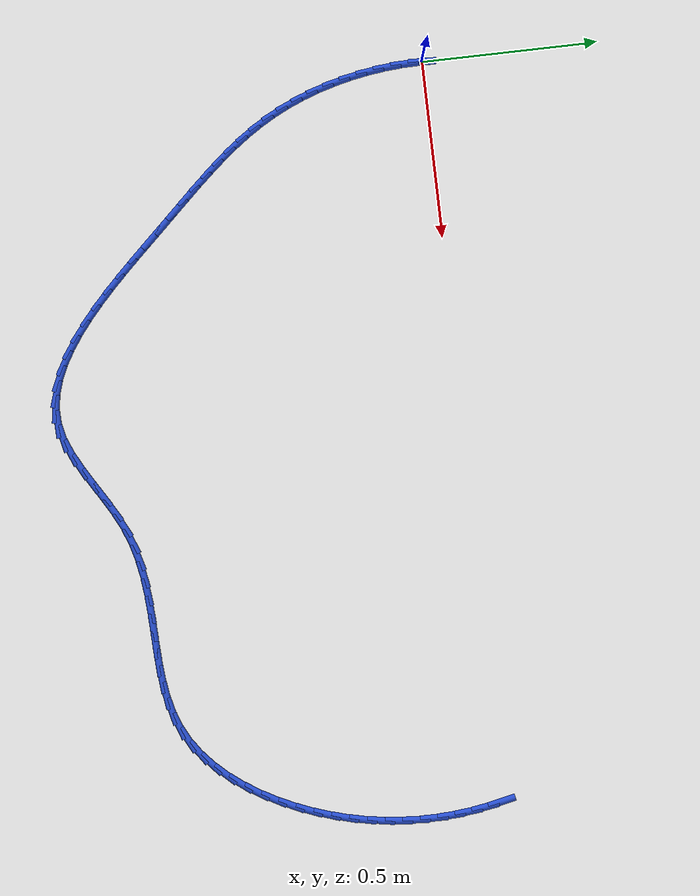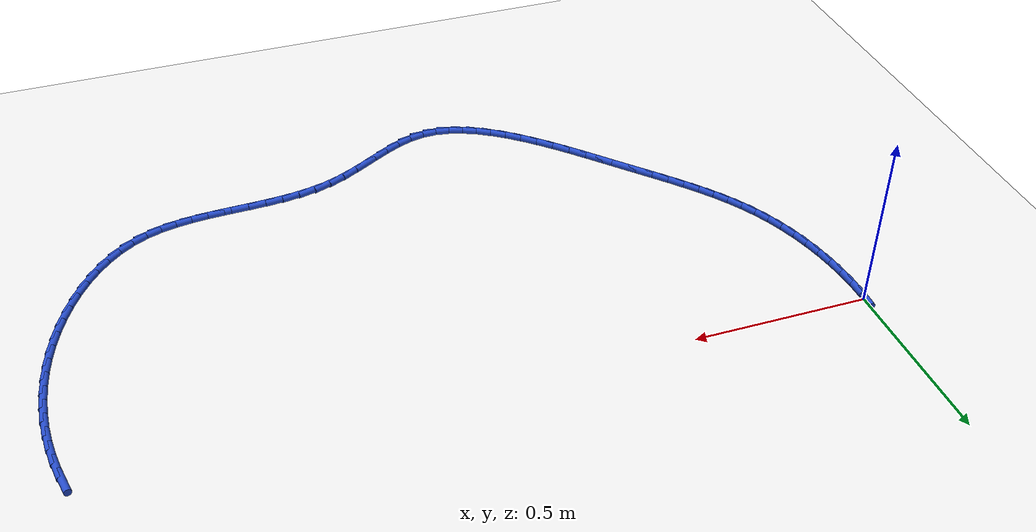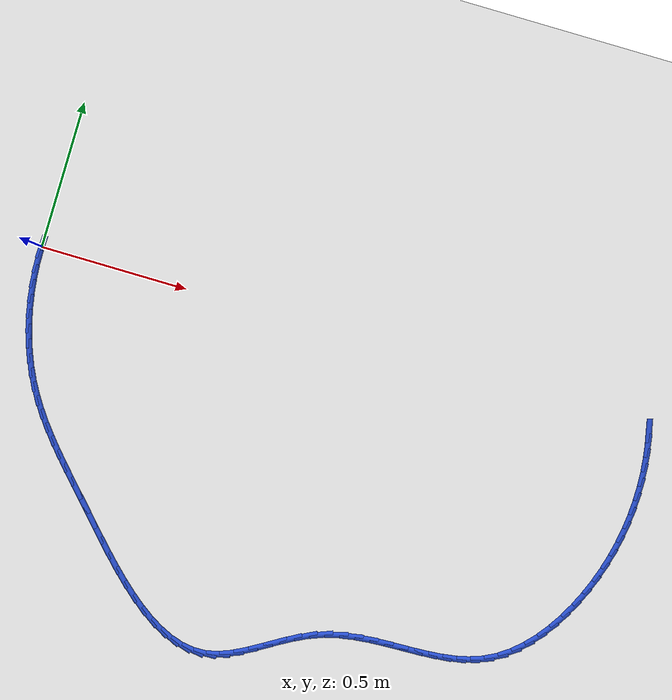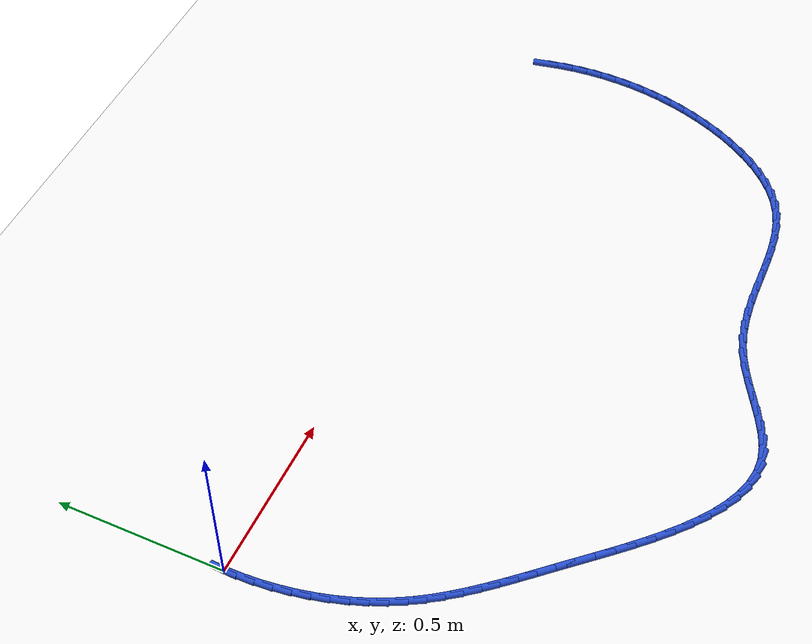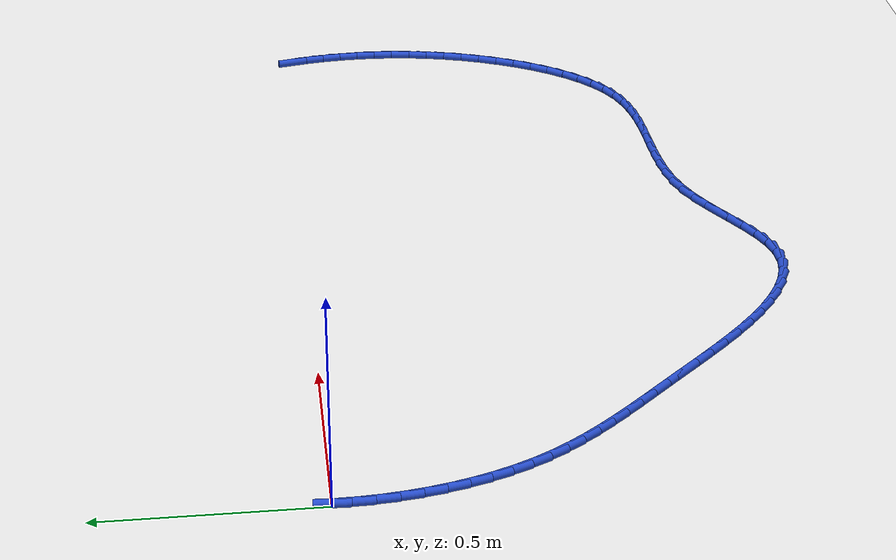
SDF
<sdf version="1.6">
 <world name="default">
  <model name="ground_plane">
   <static>1</static>
   <link name="link">
    <collision name="collision">
     <geometry><plane><normal>0 0 1</normal><size>100 100</size></plane></geometry>
     <surface><friction><ode><mu>100</mu><mu2>50</mu2></ode></friction></surface>
    </collision>
    <visual name="visual">
     <cast_shadows>0</cast_shadows>
     <geometry><plane><normal>0 0 1</normal><size>100 100</size></plane></geometry>
     <material>
      <script><uri>file://media/materials/scripts/gazebo.material</uri><name>Gazebo/WhiteGlow</name></script>
     </material>
    </visual>
   </link>
  </model>
  <model name="line">
   <link name="link_0">
    <pose>-1.5612511283791264e-17 -1.5265566588595902e-16 0.01 0 1.57 1.5342450646788208</pose>
    <collision name="collision">
     <geometry><cylinder><radius>0.01</radius><length>0.08</length></cylinder></geometry>
    </collision>
    <visual name="visual">
     <material>
      <script><name>Gazebo/Blue</name><uri>file://media/materials/scripts/gazebo.material</uri></script>
     </material>
     <geometry><cylinder><radius>0.01</radius><length>0.08</length></cylinder></geometry>
    </visual>
   </link>
   <link name="link_70">
    <pose>2.108054239630774 -0.018698689753959268 0.01 0 1.57 -1.3689528828809112</pose>
    <collision name="collision">
     <geometry><cylinder><radius>0.01</radius><length>0.08</length></cylinder></geometry>
    </collision>
    <visual name="visual">
     <material>
      <script><name>Gazebo/Blue</name><uri>file://media/materials/scripts/gazebo.material</uri></script>
     </material>
     <geometry><cylinder><radius>0.01</radius><length>0.08</length></cylinder></geometry>
    </visual>
   </link>
   <link name="link_71">
    <pose>2.1178696125427465 -0.0666651432302403 0.01 0 1.57 -1.4231173401517498</pose>
    <collision name="collision">
     <geometry><cylinder><radius>0.01</radius><length>0.08</length></cylinder></geometry>
    </collision>
    <visual name="visual">
     <material>
      <script><name>Gazebo/Blue</name><uri>file://media/materials/scripts/gazebo.material</uri></script>
     </material>
     <geometry><cylinder><radius>0.01</radius><length>0.08</length></cylinder></geometry>
    </visual>
   </link>
   <link name="link_72">
    <pose>2.125110784480862 -0.11534135843463025 0.01 0 1.57 -1.4769603775398468</pose>
    <collision name="collision">
     <geometry><cylinder><radius>0.01</radius><length>0.08</length></cylinder></geometry>
    </collision>
    <visual name="visual">
     <material>
      <script><name>Gazebo/Blue</name><uri>file://media/materials/scripts/gazebo.material</uri></script>
     </material>
     <geometry><cylinder><radius>0.01</radius><length>0.08</length></cylinder></geometry>
    </visual>
   </link>
   <link name="link_73">
    <pose>2.1297460380336526 -0.16459370618647606 0.01 0 1.57 -1.5306202763503305</pose>
    <collision name="collision">
     <geometry><cylinder><radius>0.01</radius><length>0.08</length></cylinder></geometry>
    </collision>
    <visual name="visual">
     <material>
      <script><name>Gazebo/Blue</name><uri>file://media/materials/scripts/gazebo.material</uri></script>
     </material>
     <geometry><cylinder><radius>0.01</radius><length>0.08</length></cylinder></geometry>
    </visual>
   </link>
   <link name="link_74">
    <pose>2.131743655789652 -0.21428855730512217 0.01 0 1.57 1.5573634266578944</pose>
    <collision name="collision">
     <geometry><cylinder><radius>0.01</radius><length>0.08</length></cylinder></geometry>
    </collision>
    <visual name="visual">
     <material>
      <script><name>Gazebo/Blue</name><uri>file://media/materials/scripts/gazebo.material</uri></script>
     </material>
     <geometry><cylinder><radius>0.01</radius><length>0.08</length></cylinder></geometry>
    </visual>
   </link>
   <link name="link_75">
    <pose>2.131071920337392 -0.26429228260991533 0.01 0 1.57 1.5036817484877711</pose>
    <collision name="collision">
     <geometry><cylinder><radius>0.01</radius><length>0.08</length></cylinder></geometry>
    </collision>
    <visual name="visual">
     <material>
      <script><name>Gazebo/Blue</name><uri>file://media/materials/scripts/gazebo.material</uri></script>
     </material>
     <geometry><cylinder><radius>0.01</radius><length>0.08</length></cylinder></geometry>
    </visual>
   </link>
   <link name="link_76">
    <pose>2.1276991142654054 -0.31447125292020156 0.01 0 1.57 1.4498145323759668</pose>
    <collision name="collision">
     <geometry><cylinder><radius>0.01</radius><length>0.08</length></cylinder></geometry>
    </collision>
    <visual name="visual">
     <material>
      <script><name>Gazebo/Blue</name><uri>file://media/materials/scripts/gazebo.material</uri></script>
     </material>
     <geometry><cylinder><radius>0.01</radius><length>0.08</length></cylinder></geometry>
    </visual>
   </link>
   <link name="link_77">
    <pose>2.1215935201622242 -0.3646918390553269 0.01 0 1.57 1.3956621617604974</pose>
    <collision name="collision">
     <geometry><cylinder><radius>0.01</radius><length>0.08</length></cylinder></geometry>
    </collision>
    <visual name="visual">
     <material>
      <script><name>Gazebo/Blue</name><uri>file://media/materials/scripts/gazebo.material</uri></script>
     </material>
     <geometry><cylinder><radius>0.01</radius><length>0.08</length></cylinder></geometry>
    </visual>
   </link>
   <link name="link_78">
    <pose>2.112723420616382 -0.41482041183463825 0.01 0 1.57 1.3411405396196014</pose>
    <collision name="collision">
     <geometry><cylinder><radius>0.01</radius><length>0.08</length></cylinder></geometry>
    </collision>
    <visual name="visual">
     <material>
      <script><name>Gazebo/Blue</name><uri>file://media/materials/scripts/gazebo.material</uri></script>
     </material>
     <geometry><cylinder><radius>0.01</radius><length>0.08</length></cylinder></geometry>
    </visual>
   </link>
   <link name="link_79">
    <pose>2.10105709821641 -0.4647233420774799 0.01 0 1.57 1.2861833971301648</pose>
    <collision name="collision">
     <geometry><cylinder><radius>0.01</radius><length>0.08</length></cylinder></geometry>
    </collision>
    <visual name="visual">
     <material>
      <script><name>Gazebo/Blue</name><uri>file://media/materials/scripts/gazebo.material</uri></script>
     </material>
     <geometry><cylinder><radius>0.01</radius><length>0.08</length></cylinder></geometry>
    </visual>
   </link>
   <link name="link_80">
    <pose>2.086562835550841 -0.5142670006031989 0.01 0 1.57 1.2307445329764355</pose>
    <collision name="collision">
     <geometry><cylinder><radius>0.01</radius><length>0.08</length></cylinder></geometry>
    </collision>
    <visual name="visual">
     <material>
      <script><name>Gazebo/Blue</name><uri>file://media/materials/scripts/gazebo.material</uri></script>
     </material>
     <geometry><cylinder><radius>0.01</radius><length>0.08</length></cylinder></geometry>
    </visual>
   </link>
   <link name="link_81">
    <pose>2.0692089152082085 -0.5633177582311408 0.01 0 1.57 1.1745458936774877</pose>
    <collision name="collision">
     <geometry><cylinder><radius>0.01</radius><length>0.08</length></cylinder></geometry>
    </collision>
    <visual name="visual">
     <material>
      <script><name>Gazebo/Blue</name><uri>file://media/materials/scripts/gazebo.material</uri></script>
     </material>
     <geometry><cylinder><radius>0.01</radius><length>0.08</length></cylinder></geometry>
    </visual>
   </link>
   <link name="link_82">
    <pose>2.048973559353471 -0.6116836878947159 0.01 0 1.57 1.115618686900558</pose>
    <collision name="collision">
     <geometry><cylinder><radius>0.01</radius><length>0.08</length></cylinder></geometry>
    </collision>
    <visual name="visual">
     <material>
      <script><name>Gazebo/Blue</name><uri>file://media/materials/scripts/gazebo.material</uri></script>
     </material>
     <geometry><cylinder><radius>0.01</radius><length>0.08</length></cylinder></geometry>
    </visual>
   </link>
   <link name="link_83">
    <pose>2.025891296559263 -0.6588426125860004 0.01 0 1.57 1.051960383859258</pose>
    <collision name="collision">
     <geometry><cylinder><radius>0.01</radius><length>0.08</length></cylinder></geometry>
    </collision>
    <visual name="visual">
     <material>
      <script><name>Gazebo/Blue</name><uri>file://media/materials/scripts/gazebo.material</uri></script>
     </material>
     <geometry><cylinder><radius>0.01</radius><length>0.08</length></cylinder></geometry>
    </visual>
   </link>
   <link name="link_84">
    <pose>2.000016459606581 -0.7041561990917599 0.01 0 1.57 0.9818266752228897</pose>
    <collision name="collision">
     <geometry><cylinder><radius>0.01</radius><length>0.08</length></cylinder></geometry>
    </collision>
    <visual name="visual">
     <material>
      <script><name>Gazebo/Blue</name><uri>file://media/materials/scripts/gazebo.material</uri></script>
     </material>
     <geometry><cylinder><radius>0.01</radius><length>0.08</length></cylinder></geometry>
    </visual>
   </link>
   <link name="link_85">
    <pose>1.9714034031608327 -0.746985985841685 0.01 0 1.57 0.9033005835065494</pose>
    <collision name="collision">
     <geometry><cylinder><radius>0.01</radius><length>0.08</length></cylinder></geometry>
    </collision>
    <visual name="visual">
     <material>
      <script><name>Gazebo/Blue</name><uri>file://media/materials/scripts/gazebo.material</uri></script>
     </material>
     <geometry><cylinder><radius>0.01</radius><length>0.08</length></cylinder></geometry>
    </visual>
   </link>
   <link name="link_86">
    <pose>1.940106481887428 -0.7866935112654678 0.01 0 1.57 0.8143049164532797</pose>
    <collision name="collision">
     <geometry><cylinder><radius>0.01</radius><length>0.08</length></cylinder></geometry>
    </collision>
    <visual name="visual">
     <material>
      <script><name>Gazebo/Blue</name><uri>file://media/materials/scripts/gazebo.material</uri></script>
     </material>
     <geometry><cylinder><radius>0.01</radius><length>0.08</length></cylinder></geometry>
    </visual>
   </link>
   <link name="link_87">
    <pose>1.906180050451773 -0.8226403137927997 0.01 0 1.57 0.7127265591327666</pose>
    <collision name="collision">
     <geometry><cylinder><radius>0.01</radius><length>0.08</length></cylinder></geometry>
    </collision>
    <visual name="visual">
     <material>
      <script><name>Gazebo/Blue</name><uri>file://media/materials/scripts/gazebo.material</uri></script>
     </material>
     <geometry><cylinder><radius>0.01</radius><length>0.08</length></cylinder></geometry>
    </visual>
   </link>
   <link name="link_88">
    <pose>1.869678463519279 -0.8541879318533709 0.01 0 1.57 0.5967340284299513</pose>
    <collision name="collision">
     <geometry><cylinder><radius>0.01</radius><length>0.08</length></cylinder></geometry>
    </collision>
    <visual name="visual">
     <material>
      <script><name>Gazebo/Blue</name><uri>file://media/materials/scripts/gazebo.material</uri></script>
     </material>
     <geometry><cylinder><radius>0.01</radius><length>0.08</length></cylinder></geometry>
    </visual>
   </link>
   <link name="link_89">
    <pose>1.8306560757553525 -0.8806979038768736 0.01 0 1.57 0.4655902658144307</pose>
    <collision name="collision">
     <geometry><cylinder><radius>0.01</radius><length>0.08</length></cylinder></geometry>
    </collision>
    <visual name="visual">
     <material>
      <script><name>Gazebo/Blue</name><uri>file://media/materials/scripts/gazebo.material</uri></script>
     </material>
     <geometry><cylinder><radius>0.01</radius><length>0.08</length></cylinder></geometry>
    </visual>
   </link>
   <link name="link_90">
    <pose>1.789169011243359 -0.901542278121104 0.01 0 1.57 0.33341469124790507</pose>
    <collision name="collision">
     <geometry><cylinder><radius>0.01</radius><length>0.08</length></cylinder></geometry>
    </collision>
    <visual name="visual">
     <material>
      <script><name>Gazebo/Blue</name><uri>file://media/materials/scripts/gazebo.material</uri></script>
     </material>
     <geometry><cylinder><radius>0.01</radius><length>0.08</length></cylinder></geometry>
    </visual>
   </link>
   <link name="link_91">
    <pose>1.745377145653748 -0.9167093570997585 0.01 0 1.57 0.22391660037434966</pose>
    <collision name="collision">
     <geometry><cylinder><radius>0.01</radius><length>0.08</length></cylinder></geometry>
    </collision>
    <visual name="visual">
     <material>
      <script><name>Gazebo/Blue</name><uri>file://media/materials/scripts/gazebo.material</uri></script>
     </material>
     <geometry><cylinder><radius>0.01</radius><length>0.08</length></cylinder></geometry>
    </visual>
   </link>
   <link name="link_92">
    <pose>1.6995997970013939 -0.9271344844859123 0.01 0 1.57 0.14031257284140733</pose>
    <collision name="collision">
     <geometry><cylinder><radius>0.01</radius><length>0.08</length></cylinder></geometry>
    </collision>
    <visual name="visual">
     <material>
      <script><name>Gazebo/Blue</name><uri>file://media/materials/scripts/gazebo.material</uri></script>
     </material>
     <geometry><cylinder><radius>0.01</radius><length>0.08</length></cylinder></geometry>
    </visual>
   </link>
   <link name="link_93">
    <pose>1.652169839589459 -0.9338335243628557 0.01 0 1.57 0.08164052539482167</pose>
    <collision name="collision">
     <geometry><cylinder><radius>0.01</radius><length>0.08</length></cylinder></geometry>
    </collision>
    <visual name="visual">
     <material>
      <script><name>Gazebo/Blue</name><uri>file://media/materials/scripts/gazebo.material</uri></script>
     </material>
     <geometry><cylinder><radius>0.01</radius><length>0.08</length></cylinder></geometry>
    </visual>
   </link>
   <link name="link_94">
    <pose>1.603420147721106 -0.9378223408138784 0.01 0 1.57 0.04609952675002097</pose>
    <collision name="collision">
     <geometry><cylinder><radius>0.01</radius><length>0.08</length></cylinder></geometry>
    </collision>
    <visual name="visual">
     <material>
      <script><name>Gazebo/Blue</name><uri>file://media/materials/scripts/gazebo.material</uri></script>
     </material>
     <geometry><cylinder><radius>0.01</radius><length>0.08</length></cylinder></geometry>
    </visual>
   </link>
   <link name="link_95">
    <pose>1.5536835956994968 -0.9401167979222695 0.01 0 1.57 0.0320577692633594</pose>
    <collision name="collision">
     <geometry><cylinder><radius>0.01</radius><length>0.08</length></cylinder></geometry>
    </collision>
    <visual name="visual">
     <material>
      <script><name>Gazebo/Blue</name><uri>file://media/materials/scripts/gazebo.material</uri></script>
     </material>
     <geometry><cylinder><radius>0.01</radius><length>0.08</length></cylinder></geometry>
    </visual>
   </link>
   <link name="link_96">
    <pose>1.5032930578277954 -0.9417327597713193 0.01 0 1.57 0.03849934925209024</pose>
    <collision name="collision">
     <geometry><cylinder><radius>0.01</radius><length>0.08</length></cylinder></geometry>
    </collision>
    <visual name="visual">
     <material>
      <script><name>Gazebo/Blue</name><uri>file://media/materials/scripts/gazebo.material</uri></script>
     </material>
     <geometry><cylinder><radius>0.01</radius><length>0.08</length></cylinder></geometry>
    </visual>
   </link>
   <link name="link_97">
    <pose>1.452581408409164 -0.9436860904443173 0.01 0 1.57 0.06512613028268714</pose>
    <collision name="collision">
     <geometry><cylinder><radius>0.01</radius><length>0.08</length></cylinder></geometry>
    </collision>
    <visual name="visual">
     <material>
      <script><name>Gazebo/Blue</name><uri>file://media/materials/scripts/gazebo.material</uri></script>
     </material>
     <geometry><cylinder><radius>0.01</radius><length>0.08</length></cylinder></geometry>
    </visual>
   </link>
   <link name="link_98">
    <pose>1.4018815217467646 -0.9469926540245523 0.01 0 1.57 0.1122386937729478</pose>
    <collision name="collision">
     <geometry><cylinder><radius>0.01</radius><length>0.08</length></cylinder></geometry>
    </collision>
    <visual name="visual">
     <material>
      <script><name>Gazebo/Blue</name><uri>file://media/materials/scripts/gazebo.material</uri></script>
     </material>
     <geometry><cylinder><radius>0.01</radius><length>0.08</length></cylinder></geometry>
    </visual>
   </link>
   <link name="link_99">
    <pose>1.351526272143761 -0.9526683145953156 0.01 0 1.57 0.18040499574202692</pose>
    <collision name="collision">
     <geometry><cylinder><radius>0.01</radius><length>0.08</length></cylinder></geometry>
    </collision>
    <visual name="visual">
     <material>
      <script><name>Gazebo/Blue</name><uri>file://media/materials/scripts/gazebo.material</uri></script>
     </material>
     <geometry><cylinder><radius>0.01</radius><length>0.08</length></cylinder></geometry>
    </visual>
   </link>
   <link name="link_100">
    <pose>1.3018485339033141 -0.9617289362398957 0.01 0 1.57 0.2698541983310364</pose>
    <collision name="collision">
     <geometry><cylinder><radius>0.01</radius><length>0.08</length></cylinder></geometry>
    </collision>
    <visual name="visual">
     <material>
      <script><name>Gazebo/Blue</name><uri>file://media/materials/scripts/gazebo.material</uri></script>
     </material>
     <geometry><cylinder><radius>0.01</radius><length>0.08</length></cylinder></geometry>
    </visual>
   </link>
   <link name="link_101">
    <pose>1.2531811813285887 -0.9751903830415825 0.01 0 1.57 0.3772709769018453</pose>
    <collision name="collision">
     <geometry><cylinder><radius>0.01</radius><length>0.08</length></cylinder></geometry>
    </collision>
    <visual name="visual">
     <material>
      <script><name>Gazebo/Blue</name><uri>file://media/materials/scripts/gazebo.material</uri></script>
     </material>
     <geometry><cylinder><radius>0.01</radius><length>0.08</length></cylinder></geometry>
    </visual>
   </link>
   <link name="link_102">
    <pose>1.20583575249695 -0.9939510931824018 0.01 0 1.57 0.4690635423276037</pose>
    <collision name="collision">
     <geometry><cylinder><radius>0.01</radius><length>0.08</length></cylinder></geometry>
    </collision>
    <visual name="visual">
     <material>
      <script><name>Gazebo/Blue</name><uri>file://media/materials/scripts/gazebo.material</uri></script>
     </material>
     <geometry><cylinder><radius>0.01</radius><length>0.08</length></cylinder></geometry>
    </visual>
   </link>
   <link name="link_103">
    <pose>1.159825614950184 -1.017268495595337 0.01 0 1.57 0.523819801187348</pose>
    <collision name="collision">
     <geometry><cylinder><radius>0.01</radius><length>0.08</length></cylinder></geometry>
    </collision>
    <visual name="visual">
     <material>
      <script><name>Gazebo/Blue</name><uri>file://media/materials/scripts/gazebo.material</uri></script>
     </material>
     <geometry><cylinder><radius>0.01</radius><length>0.08</length></cylinder></geometry>
    </visual>
   </link>
   <link name="link_104">
    <pose>1.1149449303020609 -1.0431935990195982 0.01 0 1.57 0.5434014461529882</pose>
    <collision name="collision">
     <geometry><cylinder><radius>0.01</radius><length>0.08</length></cylinder></geometry>
    </collision>
    <visual name="visual">
     <material>
      <script><name>Gazebo/Blue</name><uri>file://media/materials/scripts/gazebo.material</uri></script>
     </material>
     <geometry><cylinder><radius>0.01</radius><length>0.08</length></cylinder></geometry>
    </visual>
   </link>
   <link name="link_105">
    <pose>1.070982786942773 -1.0697494912370027 0.01 0 1.57 0.5276943453767166</pose>
    <collision name="collision">
     <geometry><cylinder><radius>0.01</radius><length>0.08</length></cylinder></geometry>
    </collision>
    <visual name="visual">
     <material>
      <script><name>Gazebo/Blue</name><uri>file://media/materials/scripts/gazebo.material</uri></script>
     </material>
     <geometry><cylinder><radius>0.01</radius><length>0.08</length></cylinder></geometry>
    </visual>
   </link>
   <link name="link_106">
    <pose>1.0277282732625104 -1.0949592600293683 0.01 0 1.57 0.47310401898077364</pose>
    <collision name="collision">
     <geometry><cylinder><radius>0.01</radius><length>0.08</length></cylinder></geometry>
    </collision>
    <visual name="visual">
     <material>
      <script><name>Gazebo/Blue</name><uri>file://media/materials/scripts/gazebo.material</uri></script>
     </material>
     <geometry><cylinder><radius>0.01</radius><length>0.08</length></cylinder></geometry>
    </visual>
   </link>
   <link name="link_107">
    <pose>0.9849704776514635 -1.1168459931785133 0.01 0 1.57 0.37232009365493857</pose>
    <collision name="collision">
     <geometry><cylinder><radius>0.01</radius><length>0.08</length></cylinder></geometry>
    </collision>
    <visual name="visual">
     <material>
      <script><name>Gazebo/Blue</name><uri>file://media/materials/scripts/gazebo.material</uri></script>
     </material>
     <geometry><cylinder><radius>0.01</radius><length>0.08</length></cylinder></geometry>
    </visual>
   </link>
   <link name="link_108">
    <pose>0.9424984884998228 -1.1334327784662548 0.01 0 1.57 0.21638372968666478</pose>
    <collision name="collision">
     <geometry><cylinder><radius>0.01</radius><length>0.08</length></cylinder></geometry>
    </collision>
    <visual name="visual">
     <material>
      <script><name>Gazebo/Blue</name><uri>file://media/materials/scripts/gazebo.material</uri></script>
     </material>
     <geometry><cylinder><radius>0.01</radius><length>0.08</length></cylinder></geometry>
    </visual>
   </link>
   <link name="link_109">
    <pose>0.900102412973407 -1.1427525114072599 0.01 0 1.57 0.023635888196979</pose>
    <collision name="collision">
     <geometry><cylinder><radius>0.01</radius><length>0.08</length></cylinder></geometry>
    </collision>
    <visual name="visual">
     <material>
      <script><name>Gazebo/Blue</name><uri>file://media/materials/scripts/gazebo.material</uri></script>
     </material>
     <geometry><cylinder><radius>0.01</radius><length>0.08</length></cylinder></geometry>
    </visual>
   </link>
   <link name="link_110">
    <pose>0.8576676730151203 -1.1437556809921783 0.01 0 1.57 -0.15689010509117557</pose>
    <collision name="collision">
     <geometry><cylinder><radius>0.01</radius><length>0.08</length></cylinder></geometry>
    </collision>
    <visual name="visual">
     <material>
      <script><name>Gazebo/Blue</name><uri>file://media/materials/scripts/gazebo.material</uri></script>
     </material>
     <geometry><cylinder><radius>0.01</radius><length>0.08</length></cylinder></geometry>
    </visual>
   </link>
   <link name="link_111">
    <pose>0.8152514025640912 -1.137045844207044 0.01 0 1.57 -0.31190790422827464</pose>
    <collision name="collision">
     <geometry><cylinder><radius>0.01</radius><length>0.08</length></cylinder></geometry>
    </collision>
    <visual name="visual">
     <material>
      <script><name>Gazebo/Blue</name><uri>file://media/materials/scripts/gazebo.material</uri></script>
     </material>
     <geometry><cylinder><radius>0.01</radius><length>0.08</length></cylinder></geometry>
    </visual>
   </link>
   <link name="link_112">
    <pose>0.7729287139095866 -1.1233996352594937 0.01 0 1.57 -0.43923593205033656</pose>
    <collision name="collision">
     <geometry><cylinder><radius>0.01</radius><length>0.08</length></cylinder></geometry>
    </collision>
    <visual name="visual">
     <material>
      <script><name>Gazebo/Blue</name><uri>file://media/materials/scripts/gazebo.material</uri></script>
     </material>
     <geometry><cylinder><radius>0.01</radius><length>0.08</length></cylinder></geometry>
    </visual>
   </link>
   <link name="link_113">
    <pose>0.7307747193408731 -1.1035936883571633 0.01 0 1.57 -0.5411724816883011</pose>
    <collision name="collision">
     <geometry><cylinder><radius>0.01</radius><length>0.08</length></cylinder></geometry>
    </collision>
    <visual name="visual">
     <material>
      <script><name>Gazebo/Blue</name><uri>file://media/materials/scripts/gazebo.material</uri></script>
     </material>
     <geometry><cylinder><radius>0.01</radius><length>0.08</length></cylinder></geometry>
    </visual>
   </link>
   <link name="link_114">
    <pose>0.6888645311472187 -1.0784046377076915 0.01 0 1.57 -0.6216406933071551</pose>
    <collision name="collision">
     <geometry><cylinder><radius>0.01</radius><length>0.08</length></cylinder></geometry>
    </collision>
    <visual name="visual">
     <material>
      <script><name>Gazebo/Blue</name><uri>file://media/materials/scripts/gazebo.material</uri></script>
     </material>
     <geometry><cylinder><radius>0.01</radius><length>0.08</length></cylinder></geometry>
    </visual>
   </link>
   <link name="link_115">
    <pose>0.6472732616178897 -1.0486091175187133 0.01 0 1.57 -0.684543696388508</pose>
    <collision name="collision">
     <geometry><cylinder><radius>0.01</radius><length>0.08</length></cylinder></geometry>
    </collision>
    <visual name="visual">
     <material>
      <script><name>Gazebo/Blue</name><uri>file://media/materials/scripts/gazebo.material</uri></script>
     </material>
     <geometry><cylinder><radius>0.01</radius><length>0.08</length></cylinder></geometry>
    </visual>
   </link>
   <link name="link_116">
    <pose>0.6060760230421531 -1.0149837619978663 0.01 0 1.57 -0.7331306866058992</pose>
    <collision name="collision">
     <geometry><cylinder><radius>0.01</radius><length>0.08</length></cylinder></geometry>
    </collision>
    <visual name="visual">
     <material>
      <script><name>Gazebo/Blue</name><uri>file://media/materials/scripts/gazebo.material</uri></script>
     </material>
     <geometry><cylinder><radius>0.01</radius><length>0.08</length></cylinder></geometry>
    </visual>
   </link>
   <link name="link_117">
    <pose>0.5653479277092751 -0.9783052053527868 0.01 0 1.57 -0.769873351467713</pose>
    <collision name="collision">
     <geometry><cylinder><radius>0.01</radius><length>0.08</length></cylinder></geometry>
    </collision>
    <visual name="visual">
     <material>
      <script><name>Gazebo/Blue</name><uri>file://media/materials/scripts/gazebo.material</uri></script>
     </material>
     <geometry><cylinder><radius>0.01</radius><length>0.08</length></cylinder></geometry>
    </visual>
   </link>
   <link name="link_118">
    <pose>0.525164087908524 -0.9393500817911125 0.01 0 1.57 -0.7965272907734806</pose>
    <collision name="collision">
     <geometry><cylinder><radius>0.01</radius><length>0.08</length></cylinder></geometry>
    </collision>
    <visual name="visual">
     <material>
      <script><name>Gazebo/Blue</name><uri>file://media/materials/scripts/gazebo.material</uri></script>
     </material>
     <geometry><cylinder><radius>0.01</radius><length>0.08</length></cylinder></geometry>
    </visual>
   </link>
   <link name="link_119">
    <pose>0.485599615929166 -0.8988950255204792 0.01 0 1.57 -0.8142272830138025</pose>
    <collision name="collision">
     <geometry><cylinder><radius>0.01</radius><length>0.08</length></cylinder></geometry>
    </collision>
    <visual name="visual">
     <material>
      <script><name>Gazebo/Blue</name><uri>file://media/materials/scripts/gazebo.material</uri></script>
     </material>
     <geometry><cylinder><radius>0.01</radius><length>0.08</length></cylinder></geometry>
    </visual>
   </link>
   <link name="link_120">
    <pose>0.44672962406046823 -0.8577166707485242 0.01 0 1.57 -0.8235570202692765</pose>
    <collision name="collision">
     <geometry><cylinder><radius>0.01</radius><length>0.08</length></cylinder></geometry>
    </collision>
    <visual name="visual">
     <material>
      <script><name>Gazebo/Blue</name><uri>file://media/materials/scripts/gazebo.material</uri></script>
     </material>
     <geometry><cylinder><radius>0.01</radius><length>0.08</length></cylinder></geometry>
    </visual>
   </link>
   <link name="link_121">
    <pose>0.4086292245916974 -0.8165916516828843 0.01 0 1.57 -0.8245769453391103</pose>
    <collision name="collision">
     <geometry><cylinder><radius>0.01</radius><length>0.08</length></cylinder></geometry>
    </collision>
    <visual name="visual">
     <material>
      <script><name>Gazebo/Blue</name><uri>file://media/materials/scripts/gazebo.material</uri></script>
     </material>
     <geometry><cylinder><radius>0.01</radius><length>0.08</length></cylinder></geometry>
    </visual>
   </link>
   <link name="link_122">
    <pose>0.3713735688575317 -0.7762960776683968 0.01 0 1.57 -0.8207197447844912</pose>
    <collision name="collision">
     <geometry><cylinder><radius>0.01</radius><length>0.08</length></cylinder></geometry>
    </collision>
    <visual name="visual">
     <material>
      <script><name>Gazebo/Blue</name><uri>file://media/materials/scripts/gazebo.material</uri></script>
     </material>
     <geometry><cylinder><radius>0.01</radius><length>0.08</length></cylinder></geometry>
    </visual>
   </link>
   <link name="link_123">
    <pose>0.33505900930723176 -0.7373210648621314 0.01 0 1.57 -0.82226867269529</pose>
    <collision name="collision">
     <geometry><cylinder><radius>0.01</radius><length>0.08</length></cylinder></geometry>
    </collision>
    <visual name="visual">
     <material>
      <script><name>Gazebo/Blue</name><uri>file://media/materials/scripts/gazebo.material</uri></script>
     </material>
     <geometry><cylinder><radius>0.01</radius><length>0.08</length></cylinder></geometry>
    </visual>
   </link>
   <link name="link_124">
    <pose>0.29983810091507873 -0.699402234387836 0.01 0 1.57 -0.8314968943914133</pose>
    <collision name="collision">
     <geometry><cylinder><radius>0.01</radius><length>0.08</length></cylinder></geometry>
    </collision>
    <visual name="visual">
     <material>
      <script><name>Gazebo/Blue</name><uri>file://media/materials/scripts/gazebo.material</uri></script>
     </material>
     <geometry><cylinder><radius>0.01</radius><length>0.08</length></cylinder></geometry>
    </visual>
   </link>
   <link name="link_125">
    <pose>0.26587260654228795 -0.6621514315630501 0.01 0 1.57 -0.8489296410494072</pose>
    <collision name="collision">
     <geometry><cylinder><radius>0.01</radius><length>0.08</length></cylinder></geometry>
    </collision>
    <visual name="visual">
     <material>
      <script><name>Gazebo/Blue</name><uri>file://media/materials/scripts/gazebo.material</uri></script>
     </material>
     <geometry><cylinder><radius>0.01</radius><length>0.08</length></cylinder></geometry>
    </visual>
   </link>
   <link name="link_126">
    <pose>0.2333242890500741 -0.6251805017053118 0.01 0 1.57 -0.8749443909470662</pose>
    <collision name="collision">
     <geometry><cylinder><radius>0.01</radius><length>0.08</length></cylinder></geometry>
    </collision>
    <visual name="visual">
     <material>
      <script><name>Gazebo/Blue</name><uri>file://media/materials/scripts/gazebo.material</uri></script>
     </material>
     <geometry><cylinder><radius>0.01</radius><length>0.08</length></cylinder></geometry>
    </visual>
   </link>
   <link name="link_127">
    <pose>0.2023549112996536 -0.5881012901321618 0.01 0 1.57 -0.9097005759632728</pose>
    <collision name="collision">
     <geometry><cylinder><radius>0.01</radius><length>0.08</length></cylinder></geometry>
    </collision>
    <visual name="visual">
     <material>
      <script><name>Gazebo/Blue</name><uri>file://media/materials/scripts/gazebo.material</uri></script>
     </material>
     <geometry><cylinder><radius>0.01</radius><length>0.08</length></cylinder></geometry>
    </visual>
   </link>
   <link name="link_128">
    <pose>0.17312623615224113 -0.5505256421611386 0.01 0 1.57 -0.9530544631258927</pose>
    <collision name="collision">
     <geometry><cylinder><radius>0.01</radius><length>0.08</length></cylinder></geometry>
    </collision>
    <visual name="visual">
     <material>
      <script><name>Gazebo/Blue</name><uri>file://media/materials/scripts/gazebo.material</uri></script>
     </material>
     <geometry><cylinder><radius>0.01</radius><length>0.08</length></cylinder></geometry>
    </visual>
   </link>
   <link name="link_129">
    <pose>0.14580002646905188 -0.5120654031097811 0.01 0 1.57 -1.0044728758264823</pose>
    <collision name="collision">
     <geometry><cylinder><radius>0.01</radius><length>0.08</length></cylinder></geometry>
    </collision>
    <visual name="visual">
     <material>
      <script><name>Gazebo/Blue</name><uri>file://media/materials/scripts/gazebo.material</uri></script>
     </material>
     <geometry><cylinder><radius>0.01</radius><length>0.08</length></cylinder></geometry>
    </visual>
   </link>
   <link name="link_130">
    <pose>0.12053804511130115 -0.47233241829562844 0.01 0 1.57 -1.0629704924536916</pose>
    <collision name="collision">
     <geometry><cylinder><radius>0.01</radius><length>0.08</length></cylinder></geometry>
    </collision>
    <visual name="visual">
     <material>
      <script><name>Gazebo/Blue</name><uri>file://media/materials/scripts/gazebo.material</uri></script>
     </material>
     <geometry><cylinder><radius>0.01</radius><length>0.08</length></cylinder></geometry>
    </visual>
   </link>
   <link name="link_131">
    <pose>0.09750204722189955 -0.43093856945311493 0.01 0 1.57 -1.1254017650832793</pose>
    <collision name="collision">
     <geometry><cylinder><radius>0.01</radius><length>0.08</length></cylinder></geometry>
    </collision>
    <visual name="visual">
     <material>
      <script><name>Gazebo/Blue</name><uri>file://media/materials/scripts/gazebo.material</uri></script>
     </material>
     <geometry><cylinder><radius>0.01</radius><length>0.08</length></cylinder></geometry>
    </visual>
   </link>
   <link name="link_132">
    <pose>0.07682586806906269 -0.3876274712872788 0.01 0 1.57 -1.1855055415193918</pose>
    <collision name="collision">
     <geometry><cylinder><radius>0.01</radius><length>0.08</length></cylinder></geometry>
    </collision>
    <visual name="visual">
     <material>
      <script><name>Gazebo/Blue</name><uri>file://media/materials/scripts/gazebo.material</uri></script>
     </material>
     <geometry><cylinder><radius>0.01</radius><length>0.08</length></cylinder></geometry>
    </visual>
   </link>
   <link name="link_133">
    <pose>0.05855263176969198 -0.34257073646372554 0.01 0 1.57 -1.2426610662262343</pose>
    <collision name="collision">
     <geometry><cylinder><radius>0.01</radius><length>0.08</length></cylinder></geometry>
    </collision>
    <visual name="visual">
     <material>
      <script><name>Gazebo/Blue</name><uri>file://media/materials/scripts/gazebo.material</uri></script>
     </material>
     <geometry><cylinder><radius>0.01</radius><length>0.08</length></cylinder></geometry>
    </visual>
   </link>
   <link name="link_134">
    <pose>0.04270707192413091 -0.29602674871718393 0.01 0 1.57 -1.2974625287225554</pose>
    <collision name="collision">
     <geometry><cylinder><radius>0.01</radius><length>0.08</length></cylinder></geometry>
    </collision>
    <visual name="visual">
     <material>
      <script><name>Gazebo/Blue</name><uri>file://media/materials/scripts/gazebo.material</uri></script>
     </material>
     <geometry><cylinder><radius>0.01</radius><length>0.08</length></cylinder></geometry>
    </visual>
   </link>
   <link name="link_135">
    <pose>0.029313922132722717 -0.24825389178238233 0.01 0 1.57 -1.350482791480026</pose>
    <collision name="collision">
     <geometry><cylinder><radius>0.01</radius><length>0.08</length></cylinder></geometry>
    </collision>
    <visual name="visual">
     <material>
      <script><name>Gazebo/Blue</name><uri>file://media/materials/scripts/gazebo.material</uri></script>
     </material>
     <geometry><cylinder><radius>0.01</radius><length>0.08</length></cylinder></geometry>
    </visual>
   </link>
   <link name="link_136">
    <pose>0.018397915995811295 -0.19951054939405105 0.01 0 1.57 -1.4022744358874948</pose>
    <collision name="collision">
     <geometry><cylinder><radius>0.01</radius><length>0.08</length></cylinder></geometry>
    </collision>
    <visual name="visual">
     <material>
      <script><name>Gazebo/Blue</name><uri>file://media/materials/scripts/gazebo.material</uri></script>
     </material>
     <geometry><cylinder><radius>0.01</radius><length>0.08</length></cylinder></geometry>
    </visual>
   </link>
   <link name="link_137">
    <pose>0.009983787113739862 -0.15005510528691832 0.01 0 1.57 -1.4533743148252605</pose>
    <collision name="collision">
     <geometry><cylinder><radius>0.01</radius><length>0.08</length></cylinder></geometry>
    </collision>
    <visual name="visual">
     <material>
      <script><name>Gazebo/Blue</name><uri>file://media/materials/scripts/gazebo.material</uri></script>
     </material>
     <geometry><cylinder><radius>0.01</radius><length>0.08</length></cylinder></geometry>
    </visual>
   </link>
   <link name="link_138">
    <pose>0.0040962690868518595 -0.1001459431957131 0.01 0 1.57 -1.5043101506641998</pose>
    <collision name="collision">
     <geometry><cylinder><radius>0.01</radius><length>0.08</length></cylinder></geometry>
    </collision>
    <visual name="visual">
     <material>
      <script><name>Gazebo/Blue</name><uri>file://media/materials/scripts/gazebo.material</uri></script>
     </material>
     <geometry><cylinder><radius>0.01</radius><length>0.08</length></cylinder></geometry>
    </visual>
   </link>
   <link name="link_139">
    <pose>0.0007600955154907461 -0.050041446855164366 0.01 0 1.57 -1.555608175450497</pose>
    <collision name="collision">
     <geometry><cylinder><radius>0.01</radius><length>0.08</length></cylinder></geometry>
    </collision>
    <visual name="visual">
     <material>
      <script><name>Gazebo/Blue</name><uri>file://media/materials/scripts/gazebo.material</uri></script>
     </material>
     <geometry><cylinder><radius>0.01</radius><length>0.08</length></cylinder></geometry>
    </visual>
   </link>
  </model>
 </world>
</sdf>
